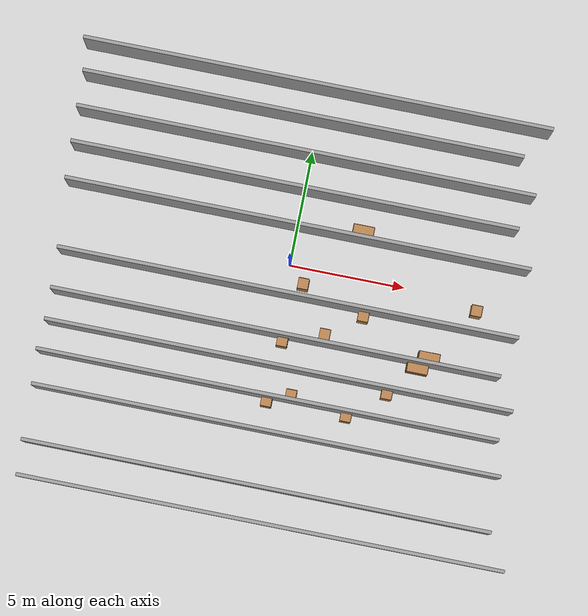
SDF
<sdf version="1.6">
 <world name="default">
  <model name="ground_plane">
   <static>1</static>
   <link name="link">
    <collision name="collision">
     <geometry><plane><normal>0 0 1</normal><size>100 100</size></plane></geometry>
     <surface><friction><ode><mu>100</mu><mu2>50</mu2></ode></friction></surface>
    </collision>
    <visual name="visual">
     <cast_shadows>0</cast_shadows>
     <geometry><plane><normal>0 0 1</normal><size>100 100</size></plane></geometry>
     <material>
      <script><uri>file://media/materials/scripts/gazebo.material</uri><name>Gazebo/Grey</name></script>
     </material>
    </visual>
   </link>
  </model>
  <model name="room17">
   <pose>0.441457 -1.72623 0 0 -0 0</pose>
   <link name="Wall_0">
    <collision name="Wall_0_Collision">
     <geometry><box><size>20.25 0.15 2.5</size></box></geometry>
     <pose>0 0 1.25 0 -0 0</pose>
    </collision>
    <visual name="Wall_0_Visual">
     <pose>0 0 1.25 0 -0 0</pose>
     <geometry><box><size>20.25 0.15 2.5</size></box></geometry>
     <material>
      <script><uri>file://media/materials/scripts/gazebo.material</uri><name>Gazebo/Grey</name></script>
      <ambient>1 1 1 1</ambient>
     </material>
     <meta><layer>0</layer></meta>
    </visual>
    <pose>-0.735743 9.32164 0 0 -0 0</pose>
   </link>
   <link name="Wall_10">
    <collision name="Wall_10_Collision">
     <geometry><box><size>19.25 0.15 2.5</size></box></geometry>
     <pose>0 0 1.25 0 -0 0</pose>
    </collision>
    <visual name="Wall_10_Visual">
     <pose>0 0 1.25 0 -0 0</pose>
     <geometry><box><size>19.25 0.15 2.5</size></box></geometry>
     <material>
      <script><uri>file://media/materials/scripts/gazebo.material</uri><name>Gazebo/Grey</name></script>
      <ambient>1 1 1 1</ambient>
     </material>
     <meta><layer>0</layer></meta>
    </visual>
    <pose>-0.865653 4.88056 0 0 -0 0</pose>
   </link>
   <link name="Wall_12">
    <collision name="Wall_12_Collision">
     <geometry><box><size>20 0.15 2.5</size></box></geometry>
     <pose>0 0 1.25 0 -0 0</pose>
    </collision>
    <visual name="Wall_12_Visual">
     <pose>0 0 1.25 0 -0 0</pose>
     <geometry><box><size>20 0.15 2.5</size></box></geometry>
     <material>
      <script><uri>file://media/materials/scripts/gazebo.material</uri><name>Gazebo/Grey</name></script>
      <ambient>1 1 1 1</ambient>
     </material>
     <meta><layer>0</layer></meta>
    </visual>
    <pose>-0.421261 3.30768 0 0 -0 0</pose>
   </link>
   <link name="Wall_14">
    <collision name="Wall_14_Collision">
     <geometry><box><size>19.75 0.15 2.5</size></box></geometry>
     <pose>0 0 1.25 0 -0 0</pose>
    </collision>
    <visual name="Wall_14_Visual">
     <pose>0 0 1.25 0 -0 0</pose>
     <geometry><box><size>19.75 0.15 2.5</size></box></geometry>
     <material>
      <script><uri>file://media/materials/scripts/gazebo.material</uri><name>Gazebo/Grey</name></script>
      <ambient>1 1 1 1</ambient>
     </material>
     <meta><layer>0</layer></meta>
    </visual>
    <pose>-0.268694 0.37009 0 0 -0 0</pose>
   </link>
   <link name="Wall_16">
    <collision name="Wall_16_Collision">
     <geometry><box><size>19.25 0.15 2.5</size></box></geometry>
     <pose>0 0 1.25 0 -0 0</pose>
    </collision>
    <visual name="Wall_16_Visual">
     <pose>0 0 1.25 0 -0 0</pose>
     <geometry><box><size>19.25 0.15 2.5</size></box></geometry>
     <material>
      <script><uri>file://media/materials/scripts/gazebo.material</uri><name>Gazebo/Grey</name></script>
      <ambient>1 1 1 1</ambient>
     </material>
     <meta><layer>0</layer></meta>
    </visual>
    <pose>-0.449302 -1.36471 0 0 -0 0</pose>
   </link>
   <link name="Wall_18">
    <collision name="Wall_18_Collision">
     <geometry><box><size>20 0.15 2.5</size></box></geometry>
     <pose>0 0 1.25 0 -0 0</pose>
    </collision>
    <visual name="Wall_18_Visual">
     <pose>0 0 1.25 0 -0 0</pose>
     <geometry><box><size>20 0.15 2.5</size></box></geometry>
     <material>
      <script><uri>file://media/materials/scripts/gazebo.material</uri><name>Gazebo/Grey</name></script>
      <ambient>1 1 1 1</ambient>
     </material>
     <meta><layer>0</layer></meta>
    </visual>
    <pose>-0.051172 -2.70628 0 0 -0 0</pose>
   </link>
   <link name="Wall_20">
    <collision name="Wall_20_Collision">
     <geometry><box><size>19.75 0.15 2.5</size></box></geometry>
     <pose>0 0 1.25 0 -0 0</pose>
    </collision>
    <visual name="Wall_20_Visual">
     <pose>0 0 1.25 0 -0 0</pose>
     <geometry><box><size>19.75 0.15 2.5</size></box></geometry>
     <material>
      <script><uri>file://media/materials/scripts/gazebo.material</uri><name>Gazebo/Grey</name></script>
      <ambient>1 1 1 1</ambient>
     </material>
     <meta><layer>0</layer></meta>
    </visual>
    <pose>-0.268694 -4.0016 0 0 -0 0</pose>
   </link>
   <link name="Wall_22">
    <collision name="Wall_22_Collision">
     <geometry><box><size>20 0.15 2.5</size></box></geometry>
     <pose>0 0 1.25 0 -0 0</pose>
    </collision>
    <visual name="Wall_22_Visual">
     <pose>0 0 1.25 0 -0 0</pose>
     <geometry><box><size>20 0.15 2.5</size></box></geometry>
     <material>
      <script><uri>file://media/materials/scripts/gazebo.material</uri><name>Gazebo/Grey</name></script>
      <ambient>1 1 1 1</ambient>
     </material>
     <meta><layer>0</layer></meta>
    </visual>
    <pose>-0.028041 -5.48195 0 0 -0 0</pose>
   </link>
   <link name="Wall_24">
    <collision name="Wall_24_Collision">
     <geometry><box><size>20 0.15 2.5</size></box></geometry>
     <pose>0 0 1.25 0 -0 0</pose>
    </collision>
    <visual name="Wall_24_Visual">
     <pose>0 0 1.25 0 -0 0</pose>
     <geometry><box><size>20 0.15 2.5</size></box></geometry>
     <material>
      <script><uri>file://media/materials/scripts/gazebo.material</uri><name>Gazebo/Grey</name></script>
      <ambient>1 1 1 1</ambient>
     </material>
     <meta><layer>0</layer></meta>
    </visual>
    <pose>0.01822 -7.84128 0 0 -0 0</pose>
   </link>
   <link name="Wall_26">
    <collision name="Wall_26_Collision">
     <geometry><box><size>20.75 0.15 2.5</size></box></geometry>
     <pose>0 0 1.25 0 -0 0</pose>
    </collision>
    <visual name="Wall_26_Visual">
     <pose>0 0 1.25 0 -0 0</pose>
     <geometry><box><size>20.75 0.15 2.5</size></box></geometry>
     <material>
      <script><uri>file://media/materials/scripts/gazebo.material</uri><name>Gazebo/Grey</name></script>
      <ambient>1 1 1 1</ambient>
     </material>
     <meta><layer>0</layer></meta>
    </visual>
    <pose>0.485743 -9.32164 0 0 -0 0</pose>
   </link>
   <link name="Wall_3">
    <collision name="Wall_3_Collision">
     <geometry><box><size>19 0.15 2.5</size></box></geometry>
     <pose>0 0 1.25 0 -0 0</pose>
    </collision>
    <visual name="Wall_3_Visual">
     <pose>0 0 1.25 0 -0 0</pose>
     <geometry><box><size>19 0.15 2.5</size></box></geometry>
     <material>
      <script><uri>file://media/materials/scripts/gazebo.material</uri><name>Gazebo/Grey</name></script>
      <ambient>1 1 1 1</ambient>
     </material>
     <meta><layer>0</layer></meta>
    </visual>
    <pose>-1.10631 7.9338 0 0 -0 0</pose>
   </link>
   <link name="Wall_5">
    <collision name="Wall_5_Collision">
     <geometry><box><size>19.75 0.15 2.5</size></box></geometry>
     <pose>0 0 1.25 0 -0 0</pose>
    </collision>
    <visual name="Wall_5_Visual">
     <pose>0 0 1.25 0 -0 0</pose>
     <geometry><box><size>19.75 0.15 2.5</size></box></geometry>
     <material>
      <script><uri>file://media/materials/scripts/gazebo.material</uri><name>Gazebo/Grey</name></script>
      <ambient>1 1 1 1</ambient>
     </material>
     <meta><layer>0</layer></meta>
    </visual>
    <pose>-0.685045 6.40718 0 0 -0 0</pose>
   </link>
   <static>1</static>
  </model>
  <model name="cabinet_21">
   <static>1</static>
   <link name="cabinet_bottom_plate">
    <inertial>
     <pose>0 0 -1 0 -0 0</pose>
     <inertia><ixx>2.05</ixx><ixy>0</ixy><ixz>0</ixz><iyy>2.05</iyy><iyz>0</iyz><izz>2.05</izz></inertia>
     <mass>25</mass>
    </inertial>
    <collision name="cabinet_bottom_plate_geom">
     <pose>0 0 0.01 0 -0 0</pose>
     <geometry><box><size>0.45 0.45 0.02</size></box></geometry>
    </collision>
    <visual name="cabinet_bottom_plate_geom_visual">
     <pose>0 0 0.01 0 -0 0</pose>
     <geometry><box><size>0.45 0.45 0.02</size></box></geometry>
     <material>
      <script><uri>file://media/materials/scripts/gazebo.material</uri><name>Gazebo/Wood</name></script>
     </material>
    </visual>
    <collision name="cabinet_bottom_plate_geom_cabinet_back_plate">
     <pose>0.235 0 0.51 0 -0 0</pose>
     <geometry><box><size>0.02 0.45 1.02</size></box></geometry>
    </collision>
    <visual name="cabinet_bottom_plate_geom_cabinet_back_plate_visual">
     <pose>0.235 0 0.51 0 -0 0</pose>
     <geometry><box><size>0.02 0.45 1.02</size></box></geometry>
     <material>
      <script><uri>file://media/materials/scripts/gazebo.material</uri><name>Gazebo/Wood</name></script>
     </material>
    </visual>
    <collision name="cabinet_bottom_plate_geom_cabinet_left_plate">
     <pose>0 0.235 0.51 0 -0 0</pose>
     <geometry><box><size>0.45 0.02 1.02</size></box></geometry>
    </collision>
    <visual name="cabinet_bottom_plate_geom_cabinet_left_plate_visual">
     <pose>0 0.235 0.51 0 -0 0</pose>
     <geometry><box><size>0.45 0.02 1.02</size></box></geometry>
     <material>
      <script><uri>file://media/materials/scripts/gazebo.material</uri><name>Gazebo/Wood</name></script>
     </material>
    </visual>
    <collision name="cabinet_bottom_plate_geom_cabinet_middle_plate">
     <pose>0 0 0.51 0 -0 0</pose>
     <geometry><box><size>0.45 0.45 0.02</size></box></geometry>
    </collision>
    <visual name="cabinet_bottom_plate_geom_cabinet_middle_plate_visual">
     <pose>0 0 0.51 0 -0 0</pose>
     <geometry><box><size>0.45 0.45 0.02</size></box></geometry>
     <material>
      <script><uri>file://media/materials/scripts/gazebo.material</uri><name>Gazebo/Wood</name></script>
     </material>
    </visual>
    <collision name="cabinet_bottom_plate_geom_cabinet_right_plate">
     <pose>0 -0.235 0.51 0 -0 0</pose>
     <geometry><box><size>0.45 0.02 1.02</size></box></geometry>
    </collision>
    <visual name="cabinet_bottom_plate_geom_cabinet_right_plate_visual">
     <pose>0 -0.235 0.51 0 -0 0</pose>
     <geometry><box><size>0.45 0.02 1.02</size></box></geometry>
     <material>
      <script><uri>file://media/materials/scripts/gazebo.material</uri><name>Gazebo/Wood</name></script>
     </material>
    </visual>
    <collision name="cabinet_bottom_plate_geom_cabinet_top_plate">
     <pose>0 0 1.01 0 -0 0</pose>
     <geometry><box><size>0.45 0.45 0.02</size></box></geometry>
    </collision>
    <visual name="cabinet_bottom_plate_geom_cabinet_top_plate_visual">
     <pose>0 0 1.01 0 -0 0</pose>
     <geometry><box><size>0.45 0.45 0.02</size></box></geometry>
     <material>
      <script><uri>file://media/materials/scripts/gazebo.material</uri><name>Gazebo/Wood</name></script>
     </material>
    </visual>
   </link>
   <pose>0.163206 -5.94054 0 0 -0 0</pose>
  </model>
  <model name="cabinet_22">
   <static>1</static>
   <link name="cabinet_bottom_plate">
    <inertial>
     <pose>0 0 -1 0 -0 0</pose>
     <inertia><ixx>2.05</ixx><ixy>0</ixy><ixz>0</ixz><iyy>2.05</iyy><iyz>0</iyz><izz>2.05</izz></inertia>
     <mass>25</mass>
    </inertial>
    <collision name="cabinet_bottom_plate_geom">
     <pose>0 0 0.01 0 -0 0</pose>
     <geometry><box><size>0.45 0.45 0.02</size></box></geometry>
    </collision>
    <visual name="cabinet_bottom_plate_geom_visual">
     <pose>0 0 0.01 0 -0 0</pose>
     <geometry><box><size>0.45 0.45 0.02</size></box></geometry>
     <material>
      <script><uri>file://media/materials/scripts/gazebo.material</uri><name>Gazebo/Wood</name></script>
     </material>
    </visual>
    <collision name="cabinet_bottom_plate_geom_cabinet_back_plate">
     <pose>0.235 0 0.51 0 -0 0</pose>
     <geometry><box><size>0.02 0.45 1.02</size></box></geometry>
    </collision>
    <visual name="cabinet_bottom_plate_geom_cabinet_back_plate_visual">
     <pose>0.235 0 0.51 0 -0 0</pose>
     <geometry><box><size>0.02 0.45 1.02</size></box></geometry>
     <material>
      <script><uri>file://media/materials/scripts/gazebo.material</uri><name>Gazebo/Wood</name></script>
     </material>
    </visual>
    <collision name="cabinet_bottom_plate_geom_cabinet_left_plate">
     <pose>0 0.235 0.51 0 -0 0</pose>
     <geometry><box><size>0.45 0.02 1.02</size></box></geometry>
    </collision>
    <visual name="cabinet_bottom_plate_geom_cabinet_left_plate_visual">
     <pose>0 0.235 0.51 0 -0 0</pose>
     <geometry><box><size>0.45 0.02 1.02</size></box></geometry>
     <material>
      <script><uri>file://media/materials/scripts/gazebo.material</uri><name>Gazebo/Wood</name></script>
     </material>
    </visual>
    <collision name="cabinet_bottom_plate_geom_cabinet_middle_plate">
     <pose>0 0 0.51 0 -0 0</pose>
     <geometry><box><size>0.45 0.45 0.02</size></box></geometry>
    </collision>
    <visual name="cabinet_bottom_plate_geom_cabinet_middle_plate_visual">
     <pose>0 0 0.51 0 -0 0</pose>
     <geometry><box><size>0.45 0.45 0.02</size></box></geometry>
     <material>
      <script><uri>file://media/materials/scripts/gazebo.material</uri><name>Gazebo/Wood</name></script>
     </material>
    </visual>
    <collision name="cabinet_bottom_plate_geom_cabinet_right_plate">
     <pose>0 -0.235 0.51 0 -0 0</pose>
     <geometry><box><size>0.45 0.02 1.02</size></box></geometry>
    </collision>
    <visual name="cabinet_bottom_plate_geom_cabinet_right_plate_visual">
     <pose>0 -0.235 0.51 0 -0 0</pose>
     <geometry><box><size>0.45 0.02 1.02</size></box></geometry>
     <material>
      <script><uri>file://media/materials/scripts/gazebo.material</uri><name>Gazebo/Wood</name></script>
     </material>
    </visual>
    <collision name="cabinet_bottom_plate_geom_cabinet_top_plate">
     <pose>0 0 1.01 0 -0 0</pose>
     <geometry><box><size>0.45 0.45 0.02</size></box></geometry>
    </collision>
    <visual name="cabinet_bottom_plate_geom_cabinet_top_plate_visual">
     <pose>0 0 1.01 0 -0 0</pose>
     <geometry><box><size>0.45 0.45 0.02</size></box></geometry>
     <material>
      <script><uri>file://media/materials/scripts/gazebo.material</uri><name>Gazebo/Wood</name></script>
     </material>
    </visual>
   </link>
   <pose>3.59272 -5.92162 0 0 -0 0</pose>
  </model>
  <model name="cabinet_26">
   <static>1</static>
   <link name="cabinet_bottom_plate">
    <inertial>
     <pose>0 0 -1 0 -0 0</pose>
     <inertia><ixx>2.05</ixx><ixy>0</ixy><ixz>0</ixz><iyy>2.05</iyy><iyz>0</iyz><izz>2.05</izz></inertia>
     <mass>25</mass>
    </inertial>
    <collision name="cabinet_bottom_plate_geom">
     <pose>0 0 0.01 0 -0 0</pose>
     <geometry><box><size>0.45 0.45 0.02</size></box></geometry>
    </collision>
    <visual name="cabinet_bottom_plate_geom_visual">
     <pose>0 0 0.01 0 -0 0</pose>
     <geometry><box><size>0.45 0.45 0.02</size></box></geometry>
     <material>
      <script><uri>file://media/materials/scripts/gazebo.material</uri><name>Gazebo/Wood</name></script>
     </material>
    </visual>
    <collision name="cabinet_bottom_plate_geom_cabinet_back_plate">
     <pose>0.235 0 0.51 0 -0 0</pose>
     <geometry><box><size>0.02 0.45 1.02</size></box></geometry>
    </collision>
    <visual name="cabinet_bottom_plate_geom_cabinet_back_plate_visual">
     <pose>0.235 0 0.51 0 -0 0</pose>
     <geometry><box><size>0.02 0.45 1.02</size></box></geometry>
     <material>
      <script><uri>file://media/materials/scripts/gazebo.material</uri><name>Gazebo/Wood</name></script>
     </material>
    </visual>
    <collision name="cabinet_bottom_plate_geom_cabinet_left_plate">
     <pose>0 0.235 0.51 0 -0 0</pose>
     <geometry><box><size>0.45 0.02 1.02</size></box></geometry>
    </collision>
    <visual name="cabinet_bottom_plate_geom_cabinet_left_plate_visual">
     <pose>0 0.235 0.51 0 -0 0</pose>
     <geometry><box><size>0.45 0.02 1.02</size></box></geometry>
     <material>
      <script><uri>file://media/materials/scripts/gazebo.material</uri><name>Gazebo/Wood</name></script>
     </material>
    </visual>
    <collision name="cabinet_bottom_plate_geom_cabinet_middle_plate">
     <pose>0 0 0.51 0 -0 0</pose>
     <geometry><box><size>0.45 0.45 0.02</size></box></geometry>
    </collision>
    <visual name="cabinet_bottom_plate_geom_cabinet_middle_plate_visual">
     <pose>0 0 0.51 0 -0 0</pose>
     <geometry><box><size>0.45 0.45 0.02</size></box></geometry>
     <material>
      <script><uri>file://media/materials/scripts/gazebo.material</uri><name>Gazebo/Wood</name></script>
     </material>
    </visual>
    <collision name="cabinet_bottom_plate_geom_cabinet_right_plate">
     <pose>0 -0.235 0.51 0 -0 0</pose>
     <geometry><box><size>0.45 0.02 1.02</size></box></geometry>
    </collision>
    <visual name="cabinet_bottom_plate_geom_cabinet_right_plate_visual">
     <pose>0 -0.235 0.51 0 -0 0</pose>
     <geometry><box><size>0.45 0.02 1.02</size></box></geometry>
     <material>
      <script><uri>file://media/materials/scripts/gazebo.material</uri><name>Gazebo/Wood</name></script>
     </material>
    </visual>
    <collision name="cabinet_bottom_plate_geom_cabinet_top_plate">
     <pose>0 0 1.01 0 -0 0</pose>
     <geometry><box><size>0.45 0.45 0.02</size></box></geometry>
    </collision>
    <visual name="cabinet_bottom_plate_geom_cabinet_top_plate_visual">
     <pose>0 0 1.01 0 -0 0</pose>
     <geometry><box><size>0.45 0.45 0.02</size></box></geometry>
     <material>
      <script><uri>file://media/materials/scripts/gazebo.material</uri><name>Gazebo/Wood</name></script>
     </material>
    </visual>
   </link>
   <pose>1.13335 -5.49162 0 0 -0 0</pose>
  </model>
  <model name="cabinet_27">
   <static>1</static>
   <link name="cabinet_bottom_plate">
    <inertial>
     <pose>0 0 -1 0 -0 0</pose>
     <inertia><ixx>2.05</ixx><ixy>0</ixy><ixz>0</ixz><iyy>2.05</iyy><iyz>0</iyz><izz>2.05</izz></inertia>
     <mass>25</mass>
    </inertial>
    <collision name="cabinet_bottom_plate_geom">
     <pose>0 0 0.01 0 -0 0</pose>
     <geometry><box><size>0.45 0.45 0.02</size></box></geometry>
    </collision>
    <visual name="cabinet_bottom_plate_geom_visual">
     <pose>0 0 0.01 0 -0 0</pose>
     <geometry><box><size>0.45 0.45 0.02</size></box></geometry>
     <material>
      <script><uri>file://media/materials/scripts/gazebo.material</uri><name>Gazebo/Wood</name></script>
     </material>
    </visual>
    <collision name="cabinet_bottom_plate_geom_cabinet_back_plate">
     <pose>0.235 0 0.51 0 -0 0</pose>
     <geometry><box><size>0.02 0.45 1.02</size></box></geometry>
    </collision>
    <visual name="cabinet_bottom_plate_geom_cabinet_back_plate_visual">
     <pose>0.235 0 0.51 0 -0 0</pose>
     <geometry><box><size>0.02 0.45 1.02</size></box></geometry>
     <material>
      <script><uri>file://media/materials/scripts/gazebo.material</uri><name>Gazebo/Wood</name></script>
     </material>
    </visual>
    <collision name="cabinet_bottom_plate_geom_cabinet_left_plate">
     <pose>0 0.235 0.51 0 -0 0</pose>
     <geometry><box><size>0.45 0.02 1.02</size></box></geometry>
    </collision>
    <visual name="cabinet_bottom_plate_geom_cabinet_left_plate_visual">
     <pose>0 0.235 0.51 0 -0 0</pose>
     <geometry><box><size>0.45 0.02 1.02</size></box></geometry>
     <material>
      <script><uri>file://media/materials/scripts/gazebo.material</uri><name>Gazebo/Wood</name></script>
     </material>
    </visual>
    <collision name="cabinet_bottom_plate_geom_cabinet_middle_plate">
     <pose>0 0 0.51 0 -0 0</pose>
     <geometry><box><size>0.45 0.45 0.02</size></box></geometry>
    </collision>
    <visual name="cabinet_bottom_plate_geom_cabinet_middle_plate_visual">
     <pose>0 0 0.51 0 -0 0</pose>
     <geometry><box><size>0.45 0.45 0.02</size></box></geometry>
     <material>
      <script><uri>file://media/materials/scripts/gazebo.material</uri><name>Gazebo/Wood</name></script>
     </material>
    </visual>
    <collision name="cabinet_bottom_plate_geom_cabinet_right_plate">
     <pose>0 -0.235 0.51 0 -0 0</pose>
     <geometry><box><size>0.45 0.02 1.02</size></box></geometry>
    </collision>
    <visual name="cabinet_bottom_plate_geom_cabinet_right_plate_visual">
     <pose>0 -0.235 0.51 0 -0 0</pose>
     <geometry><box><size>0.45 0.02 1.02</size></box></geometry>
     <material>
      <script><uri>file://media/materials/scripts/gazebo.material</uri><name>Gazebo/Wood</name></script>
     </material>
    </visual>
    <collision name="cabinet_bottom_plate_geom_cabinet_top_plate">
     <pose>0 0 1.01 0 -0 0</pose>
     <geometry><box><size>0.45 0.45 0.02</size></box></geometry>
    </collision>
    <visual name="cabinet_bottom_plate_geom_cabinet_top_plate_visual">
     <pose>0 0 1.01 0 -0 0</pose>
     <geometry><box><size>0.45 0.45 0.02</size></box></geometry>
     <material>
      <script><uri>file://media/materials/scripts/gazebo.material</uri><name>Gazebo/Wood</name></script>
     </material>
    </visual>
   </link>
   <pose>5.10797 -4.64808 0 0 -0 0</pose>
  </model>
  <model name="cabinet_30">
   <static>1</static>
   <link name="cabinet_bottom_plate">
    <inertial>
     <pose>0 0 -1 0 -0 0</pose>
     <inertia><ixx>2.05</ixx><ixy>0</ixy><ixz>0</ixz><iyy>2.05</iyy><iyz>0</iyz><izz>2.05</izz></inertia>
     <mass>25</mass>
    </inertial>
    <collision name="cabinet_bottom_plate_geom">
     <pose>0 0 0.01 0 -0 0</pose>
     <geometry><box><size>0.45 0.45 0.02</size></box></geometry>
    </collision>
    <visual name="cabinet_bottom_plate_geom_visual">
     <pose>0 0 0.01 0 -0 0</pose>
     <geometry><box><size>0.45 0.45 0.02</size></box></geometry>
     <material>
      <script><uri>file://media/materials/scripts/gazebo.material</uri><name>Gazebo/Wood</name></script>
     </material>
    </visual>
    <collision name="cabinet_bottom_plate_geom_cabinet_back_plate">
     <pose>0.235 0 0.51 0 -0 0</pose>
     <geometry><box><size>0.02 0.45 1.02</size></box></geometry>
    </collision>
    <visual name="cabinet_bottom_plate_geom_cabinet_back_plate_visual">
     <pose>0.235 0 0.51 0 -0 0</pose>
     <geometry><box><size>0.02 0.45 1.02</size></box></geometry>
     <material>
      <script><uri>file://media/materials/scripts/gazebo.material</uri><name>Gazebo/Wood</name></script>
     </material>
    </visual>
    <collision name="cabinet_bottom_plate_geom_cabinet_left_plate">
     <pose>0 0.235 0.51 0 -0 0</pose>
     <geometry><box><size>0.45 0.02 1.02</size></box></geometry>
    </collision>
    <visual name="cabinet_bottom_plate_geom_cabinet_left_plate_visual">
     <pose>0 0.235 0.51 0 -0 0</pose>
     <geometry><box><size>0.45 0.02 1.02</size></box></geometry>
     <material>
      <script><uri>file://media/materials/scripts/gazebo.material</uri><name>Gazebo/Wood</name></script>
     </material>
    </visual>
    <collision name="cabinet_bottom_plate_geom_cabinet_middle_plate">
     <pose>0 0 0.51 0 -0 0</pose>
     <geometry><box><size>0.45 0.45 0.02</size></box></geometry>
    </collision>
    <visual name="cabinet_bottom_plate_geom_cabinet_middle_plate_visual">
     <pose>0 0 0.51 0 -0 0</pose>
     <geometry><box><size>0.45 0.45 0.02</size></box></geometry>
     <material>
      <script><uri>file://media/materials/scripts/gazebo.material</uri><name>Gazebo/Wood</name></script>
     </material>
    </visual>
    <collision name="cabinet_bottom_plate_geom_cabinet_right_plate">
     <pose>0 -0.235 0.51 0 -0 0</pose>
     <geometry><box><size>0.45 0.02 1.02</size></box></geometry>
    </collision>
    <visual name="cabinet_bottom_plate_geom_cabinet_right_plate_visual">
     <pose>0 -0.235 0.51 0 -0 0</pose>
     <geometry><box><size>0.45 0.02 1.02</size></box></geometry>
     <material>
      <script><uri>file://media/materials/scripts/gazebo.material</uri><name>Gazebo/Wood</name></script>
     </material>
    </visual>
    <collision name="cabinet_bottom_plate_geom_cabinet_top_plate">
     <pose>0 0 1.01 0 -0 0</pose>
     <geometry><box><size>0.45 0.45 0.02</size></box></geometry>
    </collision>
    <visual name="cabinet_bottom_plate_geom_cabinet_top_plate_visual">
     <pose>0 0 1.01 0 -0 0</pose>
     <geometry><box><size>0.45 0.45 0.02</size></box></geometry>
     <material>
      <script><uri>file://media/materials/scripts/gazebo.material</uri><name>Gazebo/Wood</name></script>
     </material>
    </visual>
   </link>
   <pose>0.324709 -3.31099 0 0 -0 0</pose>
  </model>
  <model name="bookshelf_4">
   <static>1</static>
   <link name="link">
    <inertial><mass>1</mass></inertial>
    <collision name="back">
     <pose>0 0.005 0.6 0 -0 0</pose>
     <geometry><box><size>0.9 0.01 1.2</size></box></geometry>
    </collision>
    <visual name="visual1">
     <pose>0 0.005 0.6 0 -0 0</pose>
     <geometry><box><size>0.9 0.01 1.2</size></box></geometry>
     <material>
      <script><uri>file://media/materials/scripts/gazebo.material</uri><name>Gazebo/Wood</name></script>
     </material>
    </visual>
    <collision name="left_side">
     <pose>0.45 -0.195 0.6 0 -0 0</pose>
     <geometry><box><size>0.02 0.4 1.2</size></box></geometry>
    </collision>
    <visual name="visual2">
     <pose>0.45 -0.195 0.6 0 -0 0</pose>
     <geometry><box><size>0.02 0.4 1.2</size></box></geometry>
     <material>
      <script><uri>file://media/materials/scripts/gazebo.material</uri><name>Gazebo/Wood</name></script>
     </material>
    </visual>
    <collision name="right_side">
     <pose>-0.45 -0.195 0.6 0 -0 0</pose>
     <geometry><box><size>0.02 0.4 1.2</size></box></geometry>
    </collision>
    <visual name="visual3">
     <pose>-0.45 -0.195 0.6 0 -0 0</pose>
     <geometry><box><size>0.02 0.4 1.2</size></box></geometry>
     <material>
      <script><uri>file://media/materials/scripts/gazebo.material</uri><name>Gazebo/Wood</name></script>
     </material>
    </visual>
    <collision name="bottom">
     <pose>0 -0.195 0.03 0 -0 0</pose>
     <geometry><box><size>0.88 0.4 0.06</size></box></geometry>
    </collision>
    <visual name="visual4">
     <pose>0 -0.195 0.03 0 -0 0</pose>
     <geometry><box><size>0.88 0.4 0.06</size></box></geometry>
     <material>
      <script><uri>file://media/materials/scripts/gazebo.material</uri><name>Gazebo/Wood</name></script>
     </material>
    </visual>
    <collision name="top">
     <pose>0 -0.195 1.19 0 -0 0</pose>
     <geometry><box><size>0.88 0.4 0.02</size></box></geometry>
    </collision>
    <visual name="visual5">
     <pose>0 -0.195 1.19 0 -0 0</pose>
     <geometry><box><size>0.88 0.4 0.02</size></box></geometry>
     <material>
      <script><uri>file://media/materials/scripts/gazebo.material</uri><name>Gazebo/Wood</name></script>
     </material>
    </visual>
    <collision name="low_shelf">
     <pose>0 -0.195 0.43 0 -0 0</pose>
     <geometry><box><size>0.88 0.4 0.02</size></box></geometry>
    </collision>
    <visual name="visual6">
     <pose>0 -0.195 0.43 0 -0 0</pose>
     <geometry><box><size>0.88 0.4 0.02</size></box></geometry>
     <material>
      <script><uri>file://media/materials/scripts/gazebo.material</uri><name>Gazebo/Wood</name></script>
     </material>
    </visual>
    <collision name="high_shelf">
     <pose>0 -0.195 0.8 0 -0 0</pose>
     <geometry><box><size>0.88 0.4 0.02</size></box></geometry>
    </collision>
    <visual name="visual7">
     <pose>0 -0.195 0.8 0 -0 0</pose>
     <geometry><box><size>0.88 0.4 0.02</size></box></geometry>
     <material>
      <script><uri>file://media/materials/scripts/gazebo.material</uri><name>Gazebo/Wood</name></script>
     </material>
    </visual>
   </link>
   <pose>6.17521 -3.1524 0 0 -0 0</pose>
  </model>
  <model name="cabinet_36">
   <static>1</static>
   <link name="cabinet_bottom_plate">
    <inertial>
     <pose>0 0 -1 0 -0 0</pose>
     <inertia><ixx>2.05</ixx><ixy>0</ixy><ixz>0</ixz><iyy>2.05</iyy><iyz>0</iyz><izz>2.05</izz></inertia>
     <mass>25</mass>
    </inertial>
    <collision name="cabinet_bottom_plate_geom">
     <pose>0 0 0.01 0 -0 0</pose>
     <geometry><box><size>0.45 0.45 0.02</size></box></geometry>
    </collision>
    <visual name="cabinet_bottom_plate_geom_visual">
     <pose>0 0 0.01 0 -0 0</pose>
     <geometry><box><size>0.45 0.45 0.02</size></box></geometry>
     <material>
      <script><uri>file://media/materials/scripts/gazebo.material</uri><name>Gazebo/Wood</name></script>
     </material>
    </visual>
    <collision name="cabinet_bottom_plate_geom_cabinet_back_plate">
     <pose>0.235 0 0.51 0 -0 0</pose>
     <geometry><box><size>0.02 0.45 1.02</size></box></geometry>
    </collision>
    <visual name="cabinet_bottom_plate_geom_cabinet_back_plate_visual">
     <pose>0.235 0 0.51 0 -0 0</pose>
     <geometry><box><size>0.02 0.45 1.02</size></box></geometry>
     <material>
      <script><uri>file://media/materials/scripts/gazebo.material</uri><name>Gazebo/Wood</name></script>
     </material>
    </visual>
    <collision name="cabinet_bottom_plate_geom_cabinet_left_plate">
     <pose>0 0.235 0.51 0 -0 0</pose>
     <geometry><box><size>0.45 0.02 1.02</size></box></geometry>
    </collision>
    <visual name="cabinet_bottom_plate_geom_cabinet_left_plate_visual">
     <pose>0 0.235 0.51 0 -0 0</pose>
     <geometry><box><size>0.45 0.02 1.02</size></box></geometry>
     <material>
      <script><uri>file://media/materials/scripts/gazebo.material</uri><name>Gazebo/Wood</name></script>
     </material>
    </visual>
    <collision name="cabinet_bottom_plate_geom_cabinet_middle_plate">
     <pose>0 0 0.51 0 -0 0</pose>
     <geometry><box><size>0.45 0.45 0.02</size></box></geometry>
    </collision>
    <visual name="cabinet_bottom_plate_geom_cabinet_middle_plate_visual">
     <pose>0 0 0.51 0 -0 0</pose>
     <geometry><box><size>0.45 0.45 0.02</size></box></geometry>
     <material>
      <script><uri>file://media/materials/scripts/gazebo.material</uri><name>Gazebo/Wood</name></script>
     </material>
    </visual>
    <collision name="cabinet_bottom_plate_geom_cabinet_right_plate">
     <pose>0 -0.235 0.51 0 -0 0</pose>
     <geometry><box><size>0.45 0.02 1.02</size></box></geometry>
    </collision>
    <visual name="cabinet_bottom_plate_geom_cabinet_right_plate_visual">
     <pose>0 -0.235 0.51 0 -0 0</pose>
     <geometry><box><size>0.45 0.02 1.02</size></box></geometry>
     <material>
      <script><uri>file://media/materials/scripts/gazebo.material</uri><name>Gazebo/Wood</name></script>
     </material>
    </visual>
    <collision name="cabinet_bottom_plate_geom_cabinet_top_plate">
     <pose>0 0 1.01 0 -0 0</pose>
     <geometry><box><size>0.45 0.45 0.02</size></box></geometry>
    </collision>
    <visual name="cabinet_bottom_plate_geom_cabinet_top_plate_visual">
     <pose>0 0 1.01 0 -0 0</pose>
     <geometry><box><size>0.45 0.45 0.02</size></box></geometry>
     <material>
      <script><uri>file://media/materials/scripts/gazebo.material</uri><name>Gazebo/Wood</name></script>
     </material>
    </visual>
   </link>
   <pose>2.0341 -2.68812 0 0 -0 0</pose>
  </model>
  <model name="cabinet_37">
   <static>1</static>
   <link name="cabinet_bottom_plate">
    <inertial>
     <pose>0 0 -1 0 -0 0</pose>
     <inertia><ixx>2.05</ixx><ixy>0</ixy><ixz>0</ixz><iyy>2.05</iyy><iyz>0</iyz><izz>2.05</izz></inertia>
     <mass>25</mass>
    </inertial>
    <collision name="cabinet_bottom_plate_geom">
     <pose>0 0 0.01 0 -0 0</pose>
     <geometry><box><size>0.45 0.45 0.02</size></box></geometry>
    </collision>
    <visual name="cabinet_bottom_plate_geom_visual">
     <pose>0 0 0.01 0 -0 0</pose>
     <geometry><box><size>0.45 0.45 0.02</size></box></geometry>
     <material>
      <script><uri>file://media/materials/scripts/gazebo.material</uri><name>Gazebo/Wood</name></script>
     </material>
    </visual>
    <collision name="cabinet_bottom_plate_geom_cabinet_back_plate">
     <pose>0.235 0 0.51 0 -0 0</pose>
     <geometry><box><size>0.02 0.45 1.02</size></box></geometry>
    </collision>
    <visual name="cabinet_bottom_plate_geom_cabinet_back_plate_visual">
     <pose>0.235 0 0.51 0 -0 0</pose>
     <geometry><box><size>0.02 0.45 1.02</size></box></geometry>
     <material>
      <script><uri>file://media/materials/scripts/gazebo.material</uri><name>Gazebo/Wood</name></script>
     </material>
    </visual>
    <collision name="cabinet_bottom_plate_geom_cabinet_left_plate">
     <pose>0 0.235 0.51 0 -0 0</pose>
     <geometry><box><size>0.45 0.02 1.02</size></box></geometry>
    </collision>
    <visual name="cabinet_bottom_plate_geom_cabinet_left_plate_visual">
     <pose>0 0.235 0.51 0 -0 0</pose>
     <geometry><box><size>0.45 0.02 1.02</size></box></geometry>
     <material>
      <script><uri>file://media/materials/scripts/gazebo.material</uri><name>Gazebo/Wood</name></script>
     </material>
    </visual>
    <collision name="cabinet_bottom_plate_geom_cabinet_middle_plate">
     <pose>0 0 0.51 0 -0 0</pose>
     <geometry><box><size>0.45 0.45 0.02</size></box></geometry>
    </collision>
    <visual name="cabinet_bottom_plate_geom_cabinet_middle_plate_visual">
     <pose>0 0 0.51 0 -0 0</pose>
     <geometry><box><size>0.45 0.45 0.02</size></box></geometry>
     <material>
      <script><uri>file://media/materials/scripts/gazebo.material</uri><name>Gazebo/Wood</name></script>
     </material>
    </visual>
    <collision name="cabinet_bottom_plate_geom_cabinet_right_plate">
     <pose>0 -0.235 0.51 0 -0 0</pose>
     <geometry><box><size>0.45 0.02 1.02</size></box></geometry>
    </collision>
    <visual name="cabinet_bottom_plate_geom_cabinet_right_plate_visual">
     <pose>0 -0.235 0.51 0 -0 0</pose>
     <geometry><box><size>0.45 0.02 1.02</size></box></geometry>
     <material>
      <script><uri>file://media/materials/scripts/gazebo.material</uri><name>Gazebo/Wood</name></script>
     </material>
    </visual>
    <collision name="cabinet_bottom_plate_geom_cabinet_top_plate">
     <pose>0 0 1.01 0 -0 0</pose>
     <geometry><box><size>0.45 0.45 0.02</size></box></geometry>
    </collision>
    <visual name="cabinet_bottom_plate_geom_cabinet_top_plate_visual">
     <pose>0 0 1.01 0 -0 0</pose>
     <geometry><box><size>0.45 0.45 0.02</size></box></geometry>
     <material>
      <script><uri>file://media/materials/scripts/gazebo.material</uri><name>Gazebo/Wood</name></script>
     </material>
    </visual>
   </link>
   <pose>3.49752 -1.60534 0 0 -0 0</pose>
  </model>
  <model name="bookshelf_5">
   <static>1</static>
   <link name="link">
    <inertial><mass>1</mass></inertial>
    <collision name="back">
     <pose>0 0.005 0.6 0 -0 0</pose>
     <geometry><box><size>0.9 0.01 1.2</size></box></geometry>
    </collision>
    <visual name="visual1">
     <pose>0 0.005 0.6 0 -0 0</pose>
     <geometry><box><size>0.9 0.01 1.2</size></box></geometry>
     <material>
      <script><uri>file://media/materials/scripts/gazebo.material</uri><name>Gazebo/Wood</name></script>
     </material>
    </visual>
    <collision name="left_side">
     <pose>0.45 -0.195 0.6 0 -0 0</pose>
     <geometry><box><size>0.02 0.4 1.2</size></box></geometry>
    </collision>
    <visual name="visual2">
     <pose>0.45 -0.195 0.6 0 -0 0</pose>
     <geometry><box><size>0.02 0.4 1.2</size></box></geometry>
     <material>
      <script><uri>file://media/materials/scripts/gazebo.material</uri><name>Gazebo/Wood</name></script>
     </material>
    </visual>
    <collision name="right_side">
     <pose>-0.45 -0.195 0.6 0 -0 0</pose>
     <geometry><box><size>0.02 0.4 1.2</size></box></geometry>
    </collision>
    <visual name="visual3">
     <pose>-0.45 -0.195 0.6 0 -0 0</pose>
     <geometry><box><size>0.02 0.4 1.2</size></box></geometry>
     <material>
      <script><uri>file://media/materials/scripts/gazebo.material</uri><name>Gazebo/Wood</name></script>
     </material>
    </visual>
    <collision name="bottom">
     <pose>0 -0.195 0.03 0 -0 0</pose>
     <geometry><box><size>0.88 0.4 0.06</size></box></geometry>
    </collision>
    <visual name="visual4">
     <pose>0 -0.195 0.03 0 -0 0</pose>
     <geometry><box><size>0.88 0.4 0.06</size></box></geometry>
     <material>
      <script><uri>file://media/materials/scripts/gazebo.material</uri><name>Gazebo/Wood</name></script>
     </material>
    </visual>
    <collision name="top">
     <pose>0 -0.195 1.19 0 -0 0</pose>
     <geometry><box><size>0.88 0.4 0.02</size></box></geometry>
    </collision>
    <visual name="visual5">
     <pose>0 -0.195 1.19 0 -0 0</pose>
     <geometry><box><size>0.88 0.4 0.02</size></box></geometry>
     <material>
      <script><uri>file://media/materials/scripts/gazebo.material</uri><name>Gazebo/Wood</name></script>
     </material>
    </visual>
    <collision name="low_shelf">
     <pose>0 -0.195 0.43 0 -0 0</pose>
     <geometry><box><size>0.88 0.4 0.02</size></box></geometry>
    </collision>
    <visual name="visual6">
     <pose>0 -0.195 0.43 0 -0 0</pose>
     <geometry><box><size>0.88 0.4 0.02</size></box></geometry>
     <material>
      <script><uri>file://media/materials/scripts/gazebo.material</uri><name>Gazebo/Wood</name></script>
     </material>
    </visual>
    <collision name="high_shelf">
     <pose>0 -0.195 0.8 0 -0 0</pose>
     <geometry><box><size>0.88 0.4 0.02</size></box></geometry>
    </collision>
    <visual name="visual7">
     <pose>0 -0.195 0.8 0 -0 0</pose>
     <geometry><box><size>0.88 0.4 0.02</size></box></geometry>
     <material>
      <script><uri>file://media/materials/scripts/gazebo.material</uri><name>Gazebo/Wood</name></script>
     </material>
    </visual>
   </link>
   <pose>6.57101 -2.59321 0 0 -0 0</pose>
  </model>
  <model name="cabinet_38">
   <static>1</static>
   <link name="cabinet_bottom_plate">
    <inertial>
     <pose>0 0 -1 0 -0 0</pose>
     <inertia><ixx>2.05</ixx><ixy>0</ixy><ixz>0</ixz><iyy>2.05</iyy><iyz>0</iyz><izz>2.05</izz></inertia>
     <mass>25</mass>
    </inertial>
    <collision name="cabinet_bottom_plate_geom">
     <pose>0 0 0.01 0 -0 0</pose>
     <geometry><box><size>0.45 0.45 0.02</size></box></geometry>
    </collision>
    <visual name="cabinet_bottom_plate_geom_visual">
     <pose>0 0 0.01 0 -0 0</pose>
     <geometry><box><size>0.45 0.45 0.02</size></box></geometry>
     <material>
      <script><uri>file://media/materials/scripts/gazebo.material</uri><name>Gazebo/Wood</name></script>
     </material>
    </visual>
    <collision name="cabinet_bottom_plate_geom_cabinet_back_plate">
     <pose>0.235 0 0.51 0 -0 0</pose>
     <geometry><box><size>0.02 0.45 1.02</size></box></geometry>
    </collision>
    <visual name="cabinet_bottom_plate_geom_cabinet_back_plate_visual">
     <pose>0.235 0 0.51 0 -0 0</pose>
     <geometry><box><size>0.02 0.45 1.02</size></box></geometry>
     <material>
      <script><uri>file://media/materials/scripts/gazebo.material</uri><name>Gazebo/Wood</name></script>
     </material>
    </visual>
    <collision name="cabinet_bottom_plate_geom_cabinet_left_plate">
     <pose>0 0.235 0.51 0 -0 0</pose>
     <geometry><box><size>0.45 0.02 1.02</size></box></geometry>
    </collision>
    <visual name="cabinet_bottom_plate_geom_cabinet_left_plate_visual">
     <pose>0 0.235 0.51 0 -0 0</pose>
     <geometry><box><size>0.45 0.02 1.02</size></box></geometry>
     <material>
      <script><uri>file://media/materials/scripts/gazebo.material</uri><name>Gazebo/Wood</name></script>
     </material>
    </visual>
    <collision name="cabinet_bottom_plate_geom_cabinet_middle_plate">
     <pose>0 0 0.51 0 -0 0</pose>
     <geometry><box><size>0.45 0.45 0.02</size></box></geometry>
    </collision>
    <visual name="cabinet_bottom_plate_geom_cabinet_middle_plate_visual">
     <pose>0 0 0.51 0 -0 0</pose>
     <geometry><box><size>0.45 0.45 0.02</size></box></geometry>
     <material>
      <script><uri>file://media/materials/scripts/gazebo.material</uri><name>Gazebo/Wood</name></script>
     </material>
    </visual>
    <collision name="cabinet_bottom_plate_geom_cabinet_right_plate">
     <pose>0 -0.235 0.51 0 -0 0</pose>
     <geometry><box><size>0.45 0.02 1.02</size></box></geometry>
    </collision>
    <visual name="cabinet_bottom_plate_geom_cabinet_right_plate_visual">
     <pose>0 -0.235 0.51 0 -0 0</pose>
     <geometry><box><size>0.45 0.02 1.02</size></box></geometry>
     <material>
      <script><uri>file://media/materials/scripts/gazebo.material</uri><name>Gazebo/Wood</name></script>
     </material>
    </visual>
    <collision name="cabinet_bottom_plate_geom_cabinet_top_plate">
     <pose>0 0 1.01 0 -0 0</pose>
     <geometry><box><size>0.45 0.45 0.02</size></box></geometry>
    </collision>
    <visual name="cabinet_bottom_plate_geom_cabinet_top_plate_visual">
     <pose>0 0 1.01 0 -0 0</pose>
     <geometry><box><size>0.45 0.45 0.02</size></box></geometry>
     <material>
      <script><uri>file://media/materials/scripts/gazebo.material</uri><name>Gazebo/Wood</name></script>
     </material>
    </visual>
   </link>
   <pose>0.723247 -0.74518 0 0 -0 0</pose>
  </model>
  <model name="cabinet_39">
   <static>1</static>
   <link name="cabinet_bottom_plate">
    <inertial>
     <pose>0 0 -1 0 -0 0</pose>
     <inertia><ixx>2.05</ixx><ixy>0</ixy><ixz>0</ixz><iyy>2.05</iyy><iyz>0</iyz><izz>2.05</izz></inertia>
     <mass>25</mass>
    </inertial>
    <collision name="cabinet_bottom_plate_geom">
     <pose>0 0 0.01 0 -0 0</pose>
     <geometry><box><size>0.45 0.45 0.02</size></box></geometry>
    </collision>
    <visual name="cabinet_bottom_plate_geom_visual">
     <pose>0 0 0.01 0 -0 0</pose>
     <geometry><box><size>0.45 0.45 0.02</size></box></geometry>
     <material>
      <script><uri>file://media/materials/scripts/gazebo.material</uri><name>Gazebo/Wood</name></script>
     </material>
    </visual>
    <collision name="cabinet_bottom_plate_geom_cabinet_back_plate">
     <pose>0.235 0 0.51 0 -0 0</pose>
     <geometry><box><size>0.02 0.45 1.02</size></box></geometry>
    </collision>
    <visual name="cabinet_bottom_plate_geom_cabinet_back_plate_visual">
     <pose>0.235 0 0.51 0 -0 0</pose>
     <geometry><box><size>0.02 0.45 1.02</size></box></geometry>
     <material>
      <script><uri>file://media/materials/scripts/gazebo.material</uri><name>Gazebo/Wood</name></script>
     </material>
    </visual>
    <collision name="cabinet_bottom_plate_geom_cabinet_left_plate">
     <pose>0 0.235 0.51 0 -0 0</pose>
     <geometry><box><size>0.45 0.02 1.02</size></box></geometry>
    </collision>
    <visual name="cabinet_bottom_plate_geom_cabinet_left_plate_visual">
     <pose>0 0.235 0.51 0 -0 0</pose>
     <geometry><box><size>0.45 0.02 1.02</size></box></geometry>
     <material>
      <script><uri>file://media/materials/scripts/gazebo.material</uri><name>Gazebo/Wood</name></script>
     </material>
    </visual>
    <collision name="cabinet_bottom_plate_geom_cabinet_middle_plate">
     <pose>0 0 0.51 0 -0 0</pose>
     <geometry><box><size>0.45 0.45 0.02</size></box></geometry>
    </collision>
    <visual name="cabinet_bottom_plate_geom_cabinet_middle_plate_visual">
     <pose>0 0 0.51 0 -0 0</pose>
     <geometry><box><size>0.45 0.45 0.02</size></box></geometry>
     <material>
      <script><uri>file://media/materials/scripts/gazebo.material</uri><name>Gazebo/Wood</name></script>
     </material>
    </visual>
    <collision name="cabinet_bottom_plate_geom_cabinet_right_plate">
     <pose>0 -0.235 0.51 0 -0 0</pose>
     <geometry><box><size>0.45 0.02 1.02</size></box></geometry>
    </collision>
    <visual name="cabinet_bottom_plate_geom_cabinet_right_plate_visual">
     <pose>0 -0.235 0.51 0 -0 0</pose>
     <geometry><box><size>0.45 0.02 1.02</size></box></geometry>
     <material>
      <script><uri>file://media/materials/scripts/gazebo.material</uri><name>Gazebo/Wood</name></script>
     </material>
    </visual>
    <collision name="cabinet_bottom_plate_geom_cabinet_top_plate">
     <pose>0 0 1.01 0 -0 0</pose>
     <geometry><box><size>0.45 0.45 0.02</size></box></geometry>
    </collision>
    <visual name="cabinet_bottom_plate_geom_cabinet_top_plate_visual">
     <pose>0 0 1.01 0 -0 0</pose>
     <geometry><box><size>0.45 0.45 0.02</size></box></geometry>
     <material>
      <script><uri>file://media/materials/scripts/gazebo.material</uri><name>Gazebo/Wood</name></script>
     </material>
    </visual>
   </link>
   <pose>8.17586 -0.448621 0 0 -0 0</pose>
  </model>
  <model name="bookshelf_6">
   <static>1</static>
   <link name="link">
    <inertial><mass>1</mass></inertial>
    <collision name="back">
     <pose>0 0.005 0.6 0 -0 0</pose>
     <geometry><box><size>0.9 0.01 1.2</size></box></geometry>
    </collision>
    <visual name="visual1">
     <pose>0 0.005 0.6 0 -0 0</pose>
     <geometry><box><size>0.9 0.01 1.2</size></box></geometry>
     <material>
      <script><uri>file://media/materials/scripts/gazebo.material</uri><name>Gazebo/Wood</name></script>
     </material>
    </visual>
    <collision name="left_side">
     <pose>0.45 -0.195 0.6 0 -0 0</pose>
     <geometry><box><size>0.02 0.4 1.2</size></box></geometry>
    </collision>
    <visual name="visual2">
     <pose>0.45 -0.195 0.6 0 -0 0</pose>
     <geometry><box><size>0.02 0.4 1.2</size></box></geometry>
     <material>
      <script><uri>file://media/materials/scripts/gazebo.material</uri><name>Gazebo/Wood</name></script>
     </material>
    </visual>
    <collision name="right_side">
     <pose>-0.45 -0.195 0.6 0 -0 0</pose>
     <geometry><box><size>0.02 0.4 1.2</size></box></geometry>
    </collision>
    <visual name="visual3">
     <pose>-0.45 -0.195 0.6 0 -0 0</pose>
     <geometry><box><size>0.02 0.4 1.2</size></box></geometry>
     <material>
      <script><uri>file://media/materials/scripts/gazebo.material</uri><name>Gazebo/Wood</name></script>
     </material>
    </visual>
    <collision name="bottom">
     <pose>0 -0.195 0.03 0 -0 0</pose>
     <geometry><box><size>0.88 0.4 0.06</size></box></geometry>
    </collision>
    <visual name="visual4">
     <pose>0 -0.195 0.03 0 -0 0</pose>
     <geometry><box><size>0.88 0.4 0.06</size></box></geometry>
     <material>
      <script><uri>file://media/materials/scripts/gazebo.material</uri><name>Gazebo/Wood</name></script>
     </material>
    </visual>
    <collision name="top">
     <pose>0 -0.195 1.19 0 -0 0</pose>
     <geometry><box><size>0.88 0.4 0.02</size></box></geometry>
    </collision>
    <visual name="visual5">
     <pose>0 -0.195 1.19 0 -0 0</pose>
     <geometry><box><size>0.88 0.4 0.02</size></box></geometry>
     <material>
      <script><uri>file://media/materials/scripts/gazebo.material</uri><name>Gazebo/Wood</name></script>
     </material>
    </visual>
    <collision name="low_shelf">
     <pose>0 -0.195 0.43 0 -0 0</pose>
     <geometry><box><size>0.88 0.4 0.02</size></box></geometry>
    </collision>
    <visual name="visual6">
     <pose>0 -0.195 0.43 0 -0 0</pose>
     <geometry><box><size>0.88 0.4 0.02</size></box></geometry>
     <material>
      <script><uri>file://media/materials/scripts/gazebo.material</uri><name>Gazebo/Wood</name></script>
     </material>
    </visual>
    <collision name="high_shelf">
     <pose>0 -0.195 0.8 0 -0 0</pose>
     <geometry><box><size>0.88 0.4 0.02</size></box></geometry>
    </collision>
    <visual name="visual7">
     <pose>0 -0.195 0.8 0 -0 0</pose>
     <geometry><box><size>0.88 0.4 0.02</size></box></geometry>
     <material>
      <script><uri>file://media/materials/scripts/gazebo.material</uri><name>Gazebo/Wood</name></script>
     </material>
    </visual>
   </link>
   <pose>2.80278 2.17254 0 0 -0 0</pose>
  </model>
 </world>
</sdf>
